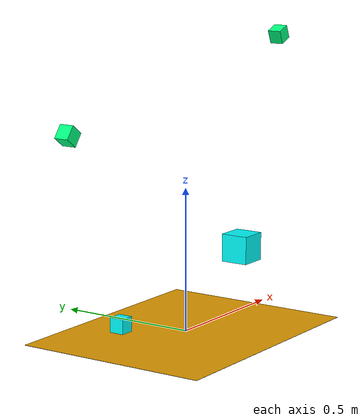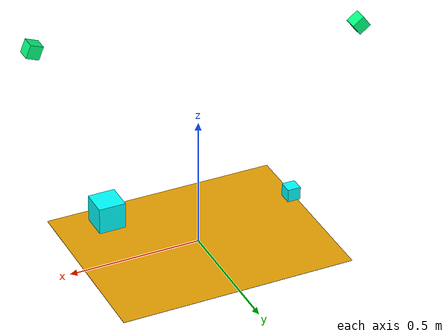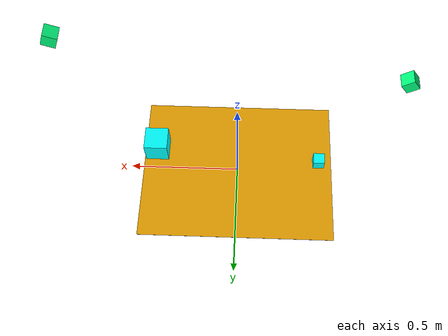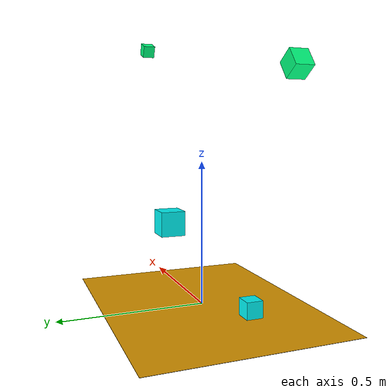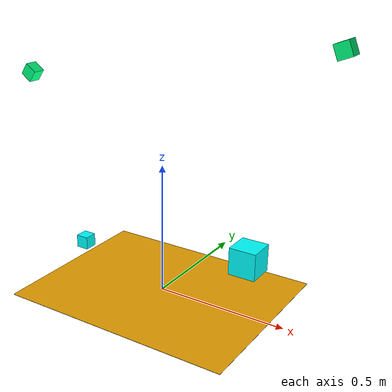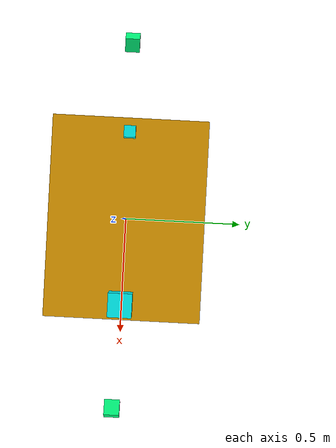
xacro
<?xml version="1.0"?>
<robot xmlns:xacro="http://ros.org/wiki/xacro"
		name="lxind">

    <!-- servo4: smaller robot -->

	<!-- const -->
	<xacro:property name="M_PI" value="3.1415926" />

	<!-- base -->
	<link name="base_footprint">
		<visual>
			<geometry>
				<box size="0.892 0.692 0.001" />
			</geometry>
		</visual>
	</link>

	<link name="base_link">
		<visual>
			<geometry>
				<box size="0.892 0.692 0.001" />
			</geometry>
			<material name="green">
				<color rgba="0 1 0 1" />
			</material>
		</visual>
	</link>

	<link name="laser_link">
		<visual>
			<geometry>
				<box size="0.1 0.1 0.1" />
			</geometry>
			<material name="gb">
				<color rgba="0 1 1 1" />
			</material>
		</visual>
	</link>
	<link name="back_laser_link">
		<visual>
			<geometry>
				<box size="0.05 0.05 0.05" />
			</geometry>
			<material name="gb">
				<color rgba="0 1 1 1" />
			</material>
		</visual>
	</link>

<!-- ifm camera -->
	<link name="ifm3d/camera1_link">
		<visual>
			<geometry>
				<box size="0.05 0.05 0.05" />
			</geometry>
			<material name="g05b">
				<color rgba="0 1 0.5 1" />
			</material>
		</visual>
	</link>
	<link name="ifm3d/camera2_link">
		<visual>
			<geometry>
				<box size="0.05 0.05 0.05" />
			</geometry>
			<material name="g05b">
				<color rgba="0 1 0.5 1" />
			</material>
		</visual>
	</link>

<!-- JOINTS -->
	<joint name="base_joint" type="fixed">
		<origin rpy="0 0 0" xyz="0 0 0" />
		<parent link="base_footprint" />
		<child link="base_link" />
	</joint>  <!-- AT TOP SURF===> NOW: FLOOR same -->

	<joint name="base_laser_joint" type="fixed">
		<origin rpy="0 0 0" xyz="0.355 0 0.228" />   <!-- xy offset from centre of driving wheel -->
		<parent link="base_link" />
		<child link="laser_link" />
	</joint>

	<joint name="base_back_laser_joint" type="fixed">
		<origin rpy="0 0 ${M_PI}" xyz="-0.373 0 0.11" />   <!-- xy offset from centre of driving wheel -->
		<parent link="base_link" />
		<child link="back_laser_link" />
	</joint>

	<joint name="base_ifm_joint1" type="fixed">
		<origin rpy="${M_PI*0.5} ${M_PI*0.38} 0" xyz="0.62 0.015 0.965" /> <!-- around red/green/blue axis -->
            <!--  around y axis(minus ->toward ground), x(ros axis), z  ${M_PI/4} -->
		<parent link="base_link" />
		<child link="ifm3d/camera1_link" />
	</joint>

	<joint name="base_ifm_joint2" type="fixed">
		<origin rpy="${M_PI*0.5} ${M_PI*0.3} ${M_PI}" xyz="-0.62 0.015 0.765" /> <!-- around red/green/blue axis -->
		<parent link="base_link" />
		<child link="ifm3d/camera2_link" />
	</joint>
</robot>
